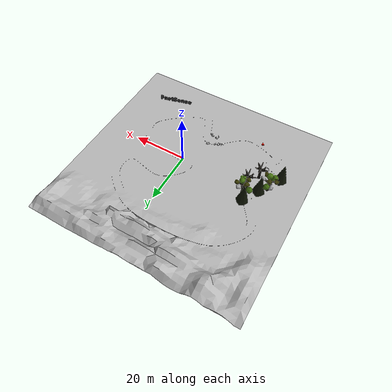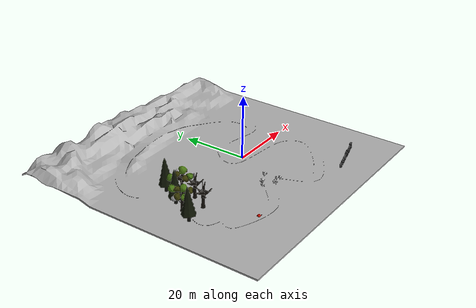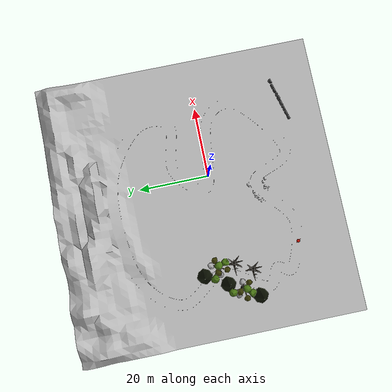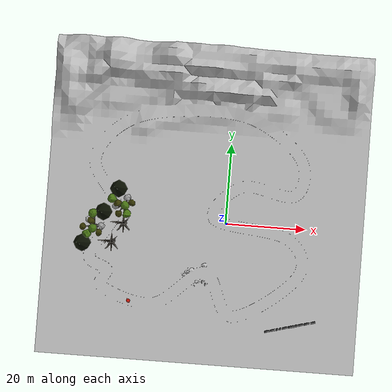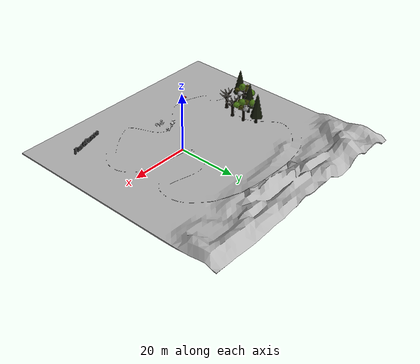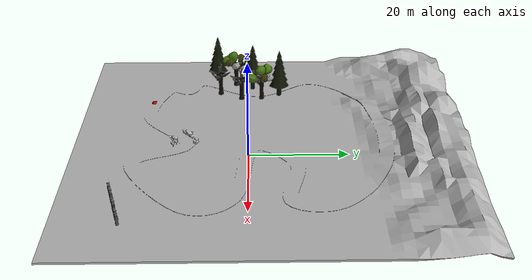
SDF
<sdf version='1.6'>
  <world name='default'>

    <scene>
      <ambient>0.5 0.5 0.5 1</ambient>
      <background>0.7 0.7 0.7 1</background>
      <sky>
        <clouds>
          <speed>12</speed>
        </clouds>
      </sky>
      <shadows>1</shadows>
    </scene>

    <physics name='default_physics' default='0' type='ode'>
      <ode>
        <solver>
          <type>quick</type>
          <iters>10</iters>
          <sor>1.3</sor>
          <use_dynamic_moi_rescaling>0</use_dynamic_moi_rescaling>
        </solver>
        <constraints>
          <cfm>0</cfm>
          <erp>0.2</erp>
          <contact_max_correcting_vel>100</contact_max_correcting_vel>
          <contact_surface_layer>0.001</contact_surface_layer>
        </constraints>
      </ode>
      <max_step_size>0.001</max_step_size>
      <real_time_factor>1</real_time_factor>
      <real_time_update_rate>1000</real_time_update_rate>
    </physics>

    <gravity>0 0 -9.8</gravity>
    <magnetic_field>6e-06 2.3e-05 -4.2e-05</magnetic_field>
    <atmosphere type='adiabatic'/>

    <audio>
      <device>default</device>
    </audio>

    <wind/>

    <spherical_coordinates>
      <surface_model>EARTH_WGS84</surface_model>
      <latitude_deg>0</latitude_deg>
      <longitude_deg>0</longitude_deg>
      <elevation>0</elevation>
      <heading_deg>0</heading_deg>
    </spherical_coordinates>

    <model name='world'>
      <link name='link_0'>
        <inertial>
          <mass>1</mass>
          <inertia>
            <ixx>0.166667</ixx>
            <ixy>0</ixy>
            <ixz>0</ixz>
            <iyy>0.166667</iyy>
            <iyz>0</iyz>
            <izz>0.166667</izz>
          </inertia>
          <pose frame=''>0 0 0 0 -0 0</pose>
        </inertial>
        <pose frame=''>-8.75 -7.2 0 0 -0 0</pose>
        <gravity>1</gravity>
        <self_collide>0</self_collide>
        <kinematic>0</kinematic>
        <enable_wind>0</enable_wind>
        <visual name='visual'>
          <pose frame=''>0 0 0 0 -0 0</pose>
          <geometry>
            <mesh>
              <uri>model://small_world/smallworld.dae</uri>
              <scale>1 1 1</scale>
            </mesh>
          </geometry>
          <transparency>0</transparency>
          <cast_shadows>1</cast_shadows>
        </visual>
        <collision name='collision'>
          <laser_retro>0</laser_retro>
          <max_contacts>10</max_contacts>
          <pose frame=''>0 0 0 0 -0 0</pose>
          <geometry>
            <mesh>
              <uri>model://small_world/smallworld.dae</uri>
              <scale>1 1 1</scale>
            </mesh>
          </geometry>
          <surface>
            <friction>
              <ode>
                <mu>1</mu>
                <mu2>1</mu2>
                <fdir1>0 0 0</fdir1>
                <slip1>0</slip1>
                <slip2>0</slip2>
              </ode>
              <torsional>
                <coefficient>1</coefficient>
                <patch_radius>0</patch_radius>
                <surface_radius>0</surface_radius>
                <use_patch_radius>1</use_patch_radius>
                <ode>
                  <slip>0</slip>
                </ode>
              </torsional>
            </friction>
            <bounce>
              <restitution_coefficient>0</restitution_coefficient>
              <threshold>1e+06</threshold>
            </bounce>
            <contact>
              <collide_without_contact>0</collide_without_contact>
              <collide_without_contact_bitmask>1</collide_without_contact_bitmask>
              <collide_bitmask>1</collide_bitmask>
              <ode>
                <soft_cfm>0</soft_cfm>
                <soft_erp>0.2</soft_erp>
                <kp>1e+13</kp>
                <kd>1</kd>
                <max_vel>0.01</max_vel>
                <min_depth>0</min_depth>
              </ode>
              <bullet>
                <split_impulse>1</split_impulse>
                <split_impulse_penetration_threshold>-0.01</split_impulse_penetration_threshold>
                <soft_cfm>0</soft_cfm>
                <soft_erp>0.2</soft_erp>
                <kp>1e+13</kp>
                <kd>1</kd>
              </bullet>
            </contact>
          </surface>
        </collision>
      </link>
      <static>1</static>
      <allow_auto_disable>1</allow_auto_disable>
      <pose frame=''>0.721906 2.51982 0 0 -0 0</pose>
    </model>

    <light name='sun' type='directional'>
      <cast_shadows>1</cast_shadows>
      <pose frame=''>0 0 10 0 -0 0</pose>
      <diffuse>0.9 0.9 0.9 1</diffuse>
      <specular>0.2 0.2 0.2 1</specular>
      <attenuation>
        <range>1000</range>
        <constant>0.9</constant>
        <linear>0.01</linear>
        <quadratic>0.001</quadratic>
      </attenuation>
      <direction>-0.5 0.1 -0.9</direction>
    </light>

    <gui fullscreen='0'>
      <camera name='user_camera'>
        <pose frame=''>24.1082 -46.5318 118.724 0 0.913799 1.75619</pose>
        <view_controller>orbit</view_controller>
        <projection_type>perspective</projection_type>
      </camera>
    </gui>

  </world>
</sdf>
